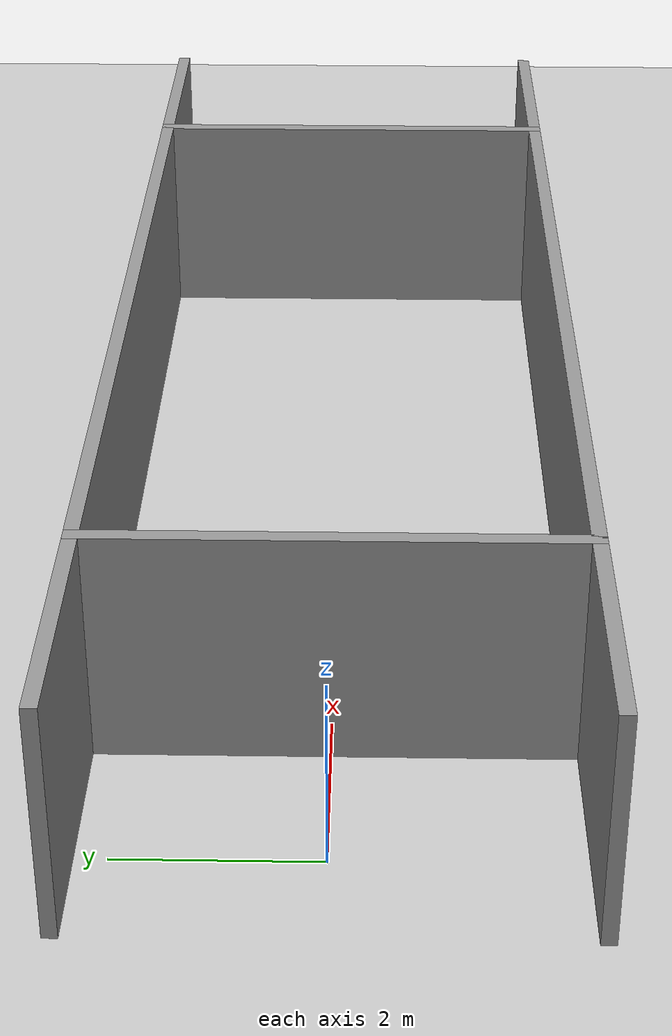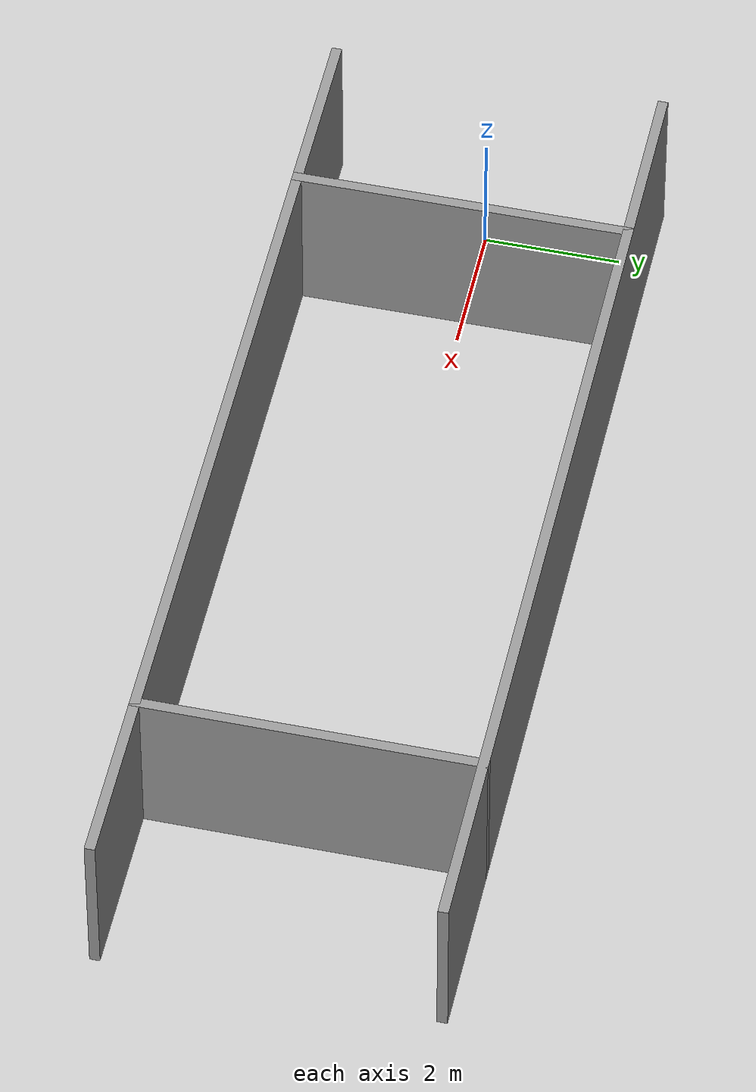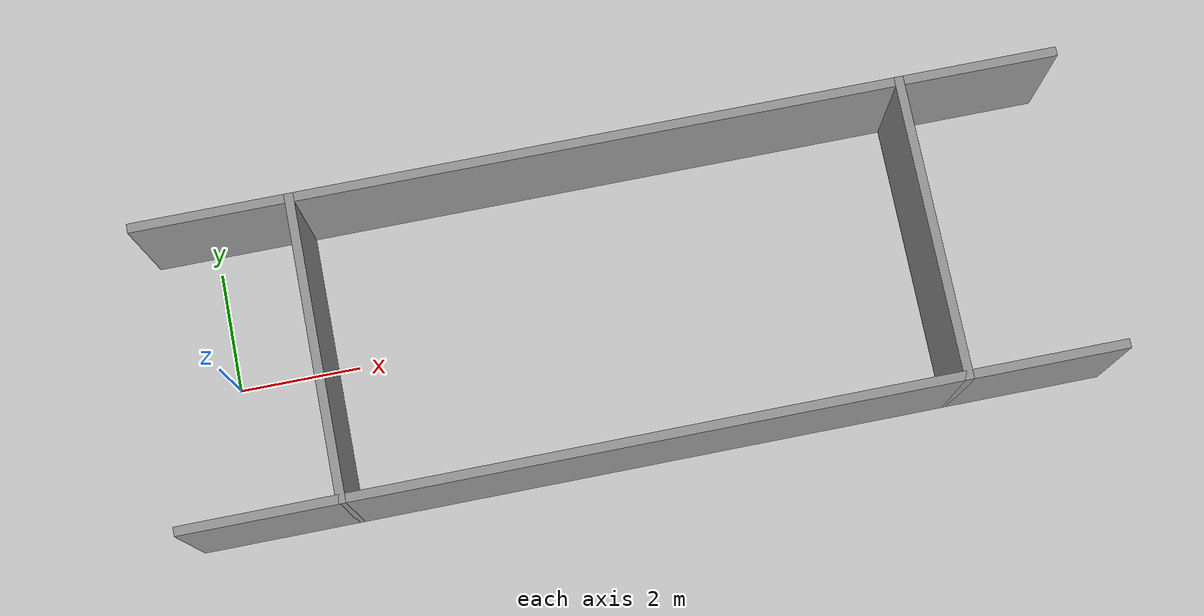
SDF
<sdf version="1.6">
 <world name="default">
  <light name="sun" type="directional">
   <pose>0 0 10 0 -0 0</pose>
   <diffuse>0.8 0.8 0.8 1</diffuse>
   <specular>0.2 0.2 0.2 1</specular>
   <attenuation>
    <range>1000</range>
    <constant>0.9</constant>
    <linear>0.01</linear>
    <quadratic>0.001</quadratic>
   </attenuation>
   <direction>-0.5 0.1 -0.9</direction>
  </light>
  <model name="ground_plane">
   <static>1</static>
   <link name="link">
    <collision name="collision">
     <geometry><plane><normal>0 0 1</normal><size>100 100</size></plane></geometry>
     <surface>
      <contact><collide_bitmask>65535</collide_bitmask></contact>
      <friction><ode><mu>100</mu><mu2>50</mu2></ode></friction>
     </surface>
    </collision>
    <visual name="visual">
     <cast_shadows>0</cast_shadows>
     <geometry><plane><normal>0 0 1</normal><size>100 100</size></plane></geometry>
     <material>
      <script><uri>file://media/materials/scripts/gazebo.material</uri><name>Gazebo/Grey</name></script>
     </material>
    </visual>
   </link>
  </model>
  <gravity>0 0 -9.8</gravity>
  <magnetic_field>6e-06 2.3e-05 -4.2e-05</magnetic_field>
  <atmosphere type="adiabatic"/>
  <physics name="default_physics" default="0" type="ode">
   <max_step_size>0.001</max_step_size>
   <real_time_factor>1</real_time_factor>
   <real_time_update_rate>1000</real_time_update_rate>
  </physics>
  <scene><ambient>0.4 0.4 0.4 1</ambient><background>0.7 0.7 0.7 1</background><shadows>1</shadows></scene>
  <audio><device>default</device></audio>
  <spherical_coordinates>
   <surface_model>EARTH_WGS84</surface_model>
   <latitude_deg>0</latitude_deg>
   <longitude_deg>0</longitude_deg>
   <elevation>0</elevation>
   <heading_deg>0</heading_deg>
  </spherical_coordinates>
  <model name="simple">
   <pose>6.49515 -0.03444 0 0 -0 0</pose>
   <link name="Wall_0">
    <collision name="Wall_0_Collision">
     <geometry><box><size>15 0.15 2.5</size></box></geometry>
     <pose>0 0 1.25 0 -0 0</pose>
    </collision>
    <visual name="Wall_0_Visual">
     <pose>0 0 1.25 0 -0 0</pose>
     <geometry><box><size>15 0.15 2.5</size></box></geometry>
     <material>
      <script><uri>file://media/materials/scripts/gazebo.material</uri><name>Gazebo/Grey</name></script>
      <ambient>1 1 1 1</ambient>
     </material>
     <meta><layer>0</layer></meta>
    </visual>
    <pose>-0 -2.425 0 0 -0 0</pose>
   </link>
   <link name="Wall_1">
    <collision name="Wall_1_Collision">
     <geometry><box><size>5 0.15 2.5</size></box></geometry>
     <pose>0 0 1.25 0 -0 0</pose>
    </collision>
    <visual name="Wall_1_Visual">
     <pose>0 0 1.25 0 -0 0</pose>
     <geometry><box><size>5 0.15 2.5</size></box></geometry>
     <material>
      <script><uri>file://media/materials/scripts/gazebo.material</uri><name>Gazebo/Grey</name></script>
      <ambient>1 1 1 1</ambient>
     </material>
     <meta><layer>0</layer></meta>
    </visual>
    <pose>4.925 -0 0 0 -0 1.5708</pose>
   </link>
   <link name="Wall_2">
    <collision name="Wall_2_Collision">
     <geometry><box><size>15 0.15 2.5</size></box></geometry>
     <pose>0 0 1.25 0 -0 0</pose>
    </collision>
    <visual name="Wall_2_Visual">
     <pose>0 0 1.25 0 -0 0</pose>
     <geometry><box><size>15 0.15 2.5</size></box></geometry>
     <material>
      <script><uri>file://media/materials/scripts/gazebo.material</uri><name>Gazebo/Grey</name></script>
      <ambient>1 1 1 1</ambient>
     </material>
     <meta><layer>0</layer></meta>
    </visual>
    <pose>-0 2.425 0 0 -0 3.14159</pose>
   </link>
   <link name="Wall_3">
    <collision name="Wall_3_Collision">
     <geometry><box><size>5 0.15 2.5</size></box></geometry>
     <pose>0 0 1.25 0 -0 0</pose>
    </collision>
    <visual name="Wall_3_Visual">
     <pose>0 0 1.25 0 -0 0</pose>
     <geometry><box><size>5 0.15 2.5</size></box></geometry>
     <material>
      <script><uri>file://media/materials/scripts/gazebo.material</uri><name>Gazebo/Grey</name></script>
      <ambient>1 1 1 1</ambient>
     </material>
     <meta><layer>0</layer></meta>
    </visual>
    <pose>-4.925 -0 0 0 -0 -1.5708</pose>
   </link>
   <static>1</static>
  </model>
  <model name="human_1_collision_model">
   <pose>0 0 -100 0 0 0</pose>
   <static>true</static>
   <link name="link">
    <collision name="link">
     <pose>0 -0.18 0.05 0 -1.5707963267948966 0</pose>
     <geometry><box><size>0.44 1.62 0.60</size></box></geometry>
    </collision>
   </link>
  </model>
  <model name="human_2_collision_model">
   <pose>0 0 -100 0 0 0</pose>
   <static>true</static>
   <link name="link">
    <collision name="link">
     <pose>0 -0.18 0.05 0 -1.5707963267948966 0</pose>
     <geometry><box><size>0.44 1.62 0.60</size></box></geometry>
    </collision>
   </link>
  </model>
  <model name="human_3_collision_model">
   <pose>0 0 -100 0 0 0</pose>
   <static>true</static>
   <link name="link">
    <collision name="link">
     <pose>0 -0.18 0.05 0 -1.5707963267948966 0</pose>
     <geometry><box><size>0.44 1.62 0.60</size></box></geometry>
    </collision>
   </link>
  </model>
  <model name="human_4_collision_model">
   <pose>0 0 -100 0 0 0</pose>
   <static>true</static>
   <link name="link">
    <collision name="link">
     <pose>0 -0.18 0.05 0 -1.5707963267948966 0</pose>
     <geometry><box><size>0.44 1.62 0.60</size></box></geometry>
    </collision>
   </link>
  </model>
  <model name="human_5_collision_model">
   <pose>0 0 -100 0 0 0</pose>
   <static>true</static>
   <link name="link">
    <collision name="link">
     <pose>0 -0.18 0.05 0 -1.5707963267948966 0</pose>
     <geometry><box><size>0.44 1.62 0.60</size></box></geometry>
    </collision>
   </link>
  </model>
  <model name="human_6_collision_model">
   <pose>0 0 -100 0 0 0</pose>
   <static>true</static>
   <link name="link">
    <collision name="link">
     <pose>0 -0.18 0.05 0 -1.5707963267948966 0</pose>
     <geometry><box><size>0.44 1.62 0.60</size></box></geometry>
    </collision>
   </link>
  </model>
 </world>
</sdf>
